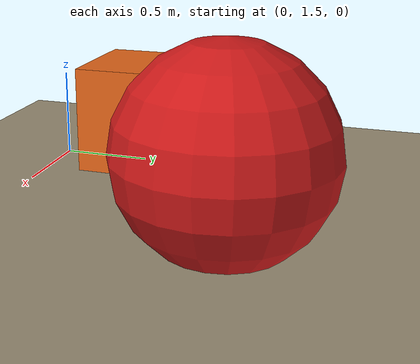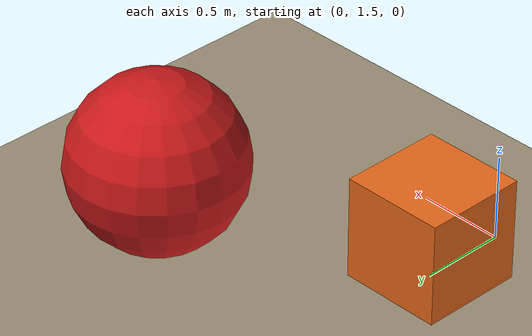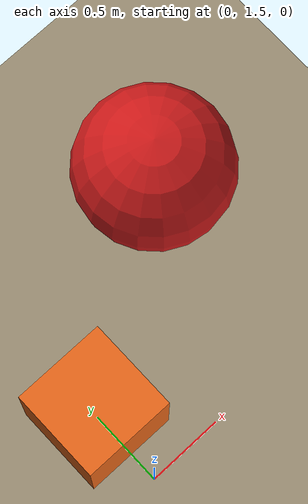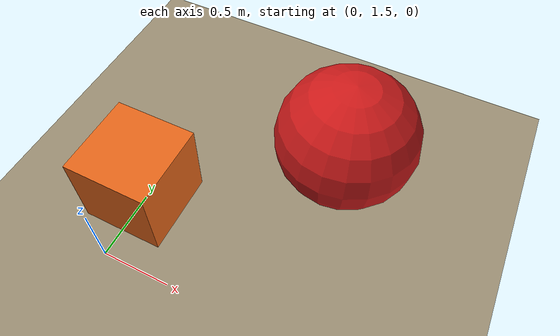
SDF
<?xml version="1.0" ?>
<sdf version="1.8">
  <world name="segmentation_probe">
    <physics name="default_physics" type="ode">
      <max_step_size>0.001</max_step_size>
      <real_time_factor>1.0</real_time_factor>
    </physics>

    <plugin filename="ignition-gazebo-physics-system" name="ignition::gazebo::systems::Physics"/>
    <plugin filename="ignition-gazebo-user-commands-system" name="ignition::gazebo::systems::UserCommands"/>
    <plugin filename="ignition-gazebo-scene-broadcaster-system" name="ignition::gazebo::systems::SceneBroadcaster"/>
    <plugin filename="ignition-gazebo-sensors-system" name="ignition::gazebo::systems::Sensors">
      <render_engine>ogre2</render_engine>
    </plugin>

    <light type="directional" name="sun">
      <cast_shadows>true</cast_shadows>
      <pose>0 0 10 0 0 0</pose>
      <diffuse>0.9 0.9 0.9 1</diffuse>
      <specular>0.2 0.2 0.2 1</specular>
      <direction>-0.5 0.1 -0.9</direction>
    </light>

    <model name="ground">
      <static>true</static>
      <link name="link">
        <collision name="collision">
          <geometry>
            <plane><normal>0 0 1</normal><size>20 20</size></plane>
          </geometry>
        </collision>
        <visual name="visual">
          <geometry>
            <plane><normal>0 0 1</normal><size>20 20</size></plane>
          </geometry>
          <material>
            <ambient>0.6 0.55 0.45 1</ambient>
            <diffuse>0.6 0.55 0.45 1</diffuse>
          </material>
          <plugin filename="ignition-gazebo-label-system" name="ignition::gazebo::systems::Label">
            <label>1</label>
          </plugin>
        </visual>
      </link>
    </model>

    <model name="rock">
      <static>true</static>
      <pose>0 2.0 0.3 0 0 0</pose>
      <link name="link">
        <collision name="collision">
          <geometry><box><size>0.6 0.6 0.6</size></box></geometry>
        </collision>
        <visual name="visual">
          <geometry><box><size>0.6 0.6 0.6</size></box></geometry>
          <material>
            <ambient>0.9 0.4 0.1 1</ambient>
            <diffuse>0.9 0.4 0.1 1</diffuse>
          </material>
        </visual>
      </link>
      <plugin filename="ignition-gazebo-label-system" name="ignition::gazebo::systems::Label">
        <label>4</label>
      </plugin>
    </model>

    <model name="boulder">
      <static>true</static>
      <pose>1.2 2.8 0.5 0 0 0</pose>
      <link name="link">
        <collision name="collision">
          <geometry><sphere><radius>0.5</radius></sphere></geometry>
        </collision>
        <visual name="visual">
          <geometry><sphere><radius>0.5</radius></sphere></geometry>
          <material>
            <ambient>0.8 0.1 0.1 1</ambient>
            <diffuse>0.8 0.1 0.1 1</diffuse>
          </material>
        </visual>
      </link>
      <plugin filename="ignition-gazebo-label-system" name="ignition::gazebo::systems::Label">
        <label>5</label>
      </plugin>
    </model>

    <!-- Camera carrier: a small static link looking along +Y toward the objects. -->
    <model name="probe_camera">
      <static>true</static>
      <pose>0 -1.0 1.0 0 0.3 1.5708</pose>
      <link name="link">
        <inertial>
          <mass>0.1</mass>
          <inertia><ixx>0.0001</ixx><iyy>0.0001</iyy><izz>0.0001</izz></inertia>
        </inertial>
        <sensor name="semantic_camera" type="segmentation">
          <topic>/probe/segmentation</topic>
          <camera>
            <segmentation_type>semantic</segmentation_type>
            <horizontal_fov>1.047</horizontal_fov>
            <image>
              <width>640</width>
              <height>480</height>
            </image>
            <clip>
              <near>0.05</near>
              <far>80</far>
            </clip>
          </camera>
          <always_on>1</always_on>
          <update_rate>5</update_rate>
          <visualize>true</visualize>
        </sensor>
      </link>
    </model>
  </world>
</sdf>
